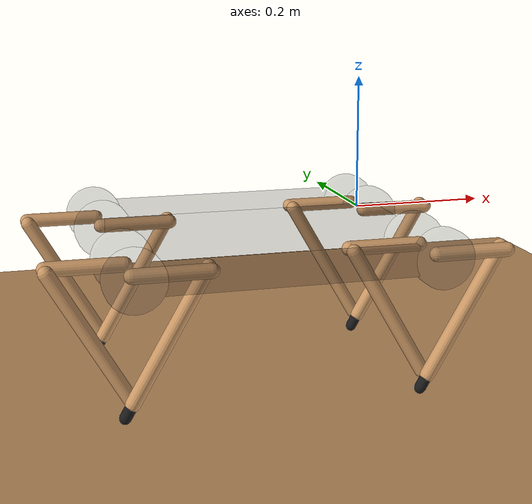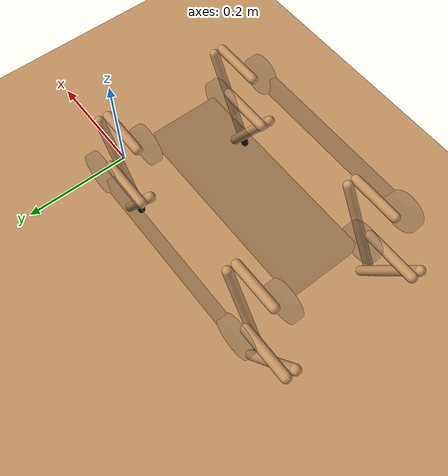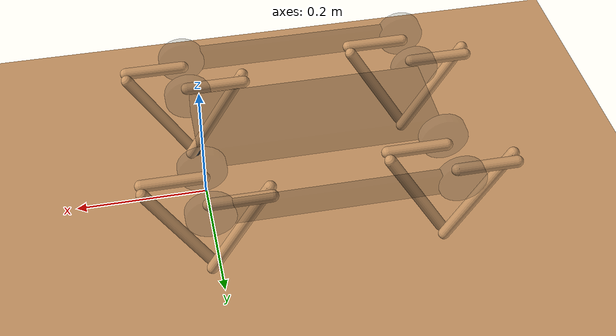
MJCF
<mujoco model="minitaur">
	<compiler coordinate="global"/>

	<default>
		<geom rgba=".8 .6 .4 1"/>
	</default>

	<asset>
		<texture type="skybox" builtin="gradient" rgb1="1 1 1" rgb2=".6 .8 1" width="256" height="256"/>
	</asset>

	<worldbody>
		<body>
			<light pos="0 2 2" dir="0 -1 -1" diffuse="1 1 1"/>
			<geom type="box" pos="-0.2 -0.33 0" size="0.2 0.008 0.02" rgba="0 0 0  0.2" />
			<geom type="box" pos="-0.2  0.05 0" size="0.2 0.008 0.02" rgba="0 0 0  0.2" />
			<geom type="box" pos="-0.2  -0.14 0" size="0.2 0.07 0.02" rgba="0 0 0  0.2" />
			<joint type="free"/>

			<body>
				<!--- Geometry for motors (1) --->
				<geom type="cylinder" fromto="0  0.04 0 0  0.06 0" size="0.04" rgba="0.2 0.2 0.2 0.2" />
				<geom type="cylinder" fromto="0 -0.04 0 0 -0.06 0" size="0.04" rgba="0.2 0.2 0.2 0.2" />

				<!---- Defines the leg a (hip, femur, knee, tibia) ---->
				<body name="leg_1a">
					<geom  name="femur_1a" type="capsule" fromto="0 -0.03 0  0.1 -0.03 0" size="0.01"/>
					<joint name="hip_1a" type="hinge" pos="0 -0.04 0" axis="0 1 0"/>

					<body name="tibia_1a">
						<geom type="capsule" fromto="0.1 -0.01 0   0 -0.01 -0.1732" size="0.01" />
						<joint name="knee_1a" type="hinge" pos="0.1 -0.02 0" axis="0 1 0"/>

						<body>
							<geom name="foot_1" type="capsule" fromto="0 -0.01 -0.1732  -0.01 -0.01 -0.19052" size="0.008"  rgba="0.1 0.1 0.1 1"/>
						</body>
					</body>
				</body>

				<!---- Defines the leg b (hip, femur, knee, tibia) ---->
				<body name="leg_1b">
					<geom  name="femur_1b" type="capsule" fromto="0 0.03 0 -0.1 0.03 0" size="0.01"/>
					<joint name="hip_1b"   type="hinge" pos="0 0.03 0" axis="0 1 0"/>

					<body name="tibia_1b">
						<geom type="capsule" fromto="-0.1 0.01 0 0 0.01 -0.1732" size="0.01"/>
						<joint name="knee_1b"  type="hinge" pos="-0.1 0.01 0" axis="0 1 0"/>
					</body>
				</body>
			</body>

			<body>
				<!--- Geometry for motors (2) --->
				<geom type="cylinder" fromto="-0.4 0.04 0 -0.4 0.06 0" size="0.04" rgba="0.2 0.2 0.2 0.2" />
				<geom type="cylinder" fromto="-0.4 -0.04 0 -0.4 -0.06 0" size="0.04" rgba="0.2 0.2 0.2 0.2" />

				<!---- Defines the leg a (hip, femur, knee, tibia) ---->
				<body name="leg_2a">
					<geom  name="femur_2a" type="capsule" fromto="-0.4 -0.03 0  -0.3 -0.03 0" size="0.01"/>
					<joint name="hip_2a" type="hinge" pos="-0.4 -0.04 0" axis="0 1 0"/>

					<body name="tibia_2a">
						<geom type="capsule" fromto="-0.3 -0.01 0   -0.4 -0.01 -0.1732" size="0.01" />
						<joint name="knee_2a" type="hinge" pos="-0.3 -0.02 0" axis="0 1 0"/>

						<body>
							<geom name="foot_2" type="capsule" fromto="-0.4 -0.01 -0.1732  -0.41 -0.01 -0.19052" size="0.008"  rgba="0.1 0.1 0.1 1"/>
						</body>
					</body>
				</body>

				<!---- Defines the leg b (hip, femur, knee, tibia) ---->
				<body name="leg_2b">
					<geom  name="femur_2b" type="capsule" fromto="-0.4 0.03 0 -0.5 0.03 0" size="0.01"/>
					<joint name="hip_2b"   type="hinge" pos="-0.4 0.03 0" axis="0 1 0"/>

					<body name="tibia_2b">
						<geom type="capsule" fromto="-0.5 0.01 0 -0.4 0.01 -0.1732" size="0.01"/>
						<joint name="knee_2b"  type="hinge" pos="-0.5 0.01 0" axis="0 1 0"/>
					</body>
				</body>
			</body>

			<body>
				<!--- Geometry for motors (3) --->
				<geom type="cylinder" fromto="0 -0.24 0 0 -0.22 0" size="0.04" rgba="0.2 0.2 0.2 0.2" />
				<geom type="cylinder" fromto="0 -0.32 0 0 -0.34 0" size="0.04" rgba="0.2 0.2 0.2 0.2" />

				<!---- Defines the leg a (hip, femur, knee, tibia) ---->
				<body name="leg_3a">
					<geom  name="femur_3a" type="capsule" fromto="0 -0.31 0  0.1 -0.31 0" size="0.01"/>
					<joint name="hip_3a" type="hinge" pos="0 -0.32 0" axis="0 1 0"/>

					<body name="tibia_3a">
						<geom type="capsule" fromto="0.1 -0.29 0   0 -0.29 -0.1732" size="0.01" />
						<joint name="knee_3a" type="hinge" pos="0.1 -0.30 0" axis="0 1 0"/>

						<body>
							<geom name="foot_3" type="capsule" fromto="0 -0.29 -0.1732  -0.01 -0.29 -0.19052" size="0.008"  rgba="0.1 0.1 0.1 1"/>
						</body>
					</body>
				</body>

				<!---- Defines the leg b (hip, femur, knee, tibia) ---->
				<body name="leg_3b">
					<geom  name="femur_3b" type="capsule" fromto="0 -0.25 0 -0.1 -0.25 0" size="0.01"/>
					<joint name="hip_3b"   type="hinge" pos="0 -0.24 0" axis="0 1 0"/>

					<body name="tibia_3b">
						<geom type="capsule" fromto="-0.1 -0.27 0 0 -0.27 -0.1732" size="0.01"/>
						<joint name="knee_3b"  type="hinge" pos="-0.1 -0.26 0" axis="0 1 0"/>
					</body>
				</body>
			</body>

			<body>
				<!--- Geometry for motors (4) --->
				<geom type="cylinder" fromto="-0.4 -0.24 0 -0.4 -0.22 0" size="0.04" rgba="0.2 0.2 0.2 0.2" />
				<geom type="cylinder" fromto="-0.4 -0.32 0 -0.4 -0.34 0" size="0.04" rgba="0.2 0.2 0.2 0.2" />

				<!---- Defines the leg a (hip, femur, knee, tibia) ---->
				<body name="leg_4a">
					<geom  name="femur_4a" type="capsule" fromto="-0.4 -0.31 0  -0.3 -0.31 0" size="0.01"/>
					<joint name="hip_4a" type="hinge" pos="-0.4 -0.32 0" axis="0 1 0"/>

					<body name="tibia_4a">
						<geom type="capsule" fromto="-0.3 -0.29 0   -0.4 -0.29 -0.1732" size="0.01" />
						<joint name="knee_4a" type="hinge" pos="-0.3 -0.30 0" axis="0 1 0"/>

						<body>
							<geom name="foot_4" type="capsule" fromto="-0.4 -0.29 -0.1732  -0.41 -0.29 -0.19052" size="0.008"  rgba="0.1 0.1 0.1 1"/>
						</body>
					</body>
				</body>

				<!---- Defines the leg b (hip, femur, knee, tibia) ---->
				<body name="leg_4b">
					<geom  name="femur_4b" type="capsule" fromto="-0.4 -0.25 0 -0.5 -0.25 0" size="0.01"/>
					<joint name="hip_4b"   type="hinge" pos="-0.4 -0.24 0" axis="0 1 0"/>

					<body name="tibia_4b">
						<geom type="capsule" fromto="-0.5 -0.27 0 -0.4 -0.27 -0.1732" size="0.01"/>
						<joint name="knee_4b"  type="hinge" pos="-0.5 -0.26 0" axis="0 1 0"/>
					</body>
				</body>
			</body>
		</body>

		<geom type="plane" pos="0 0 -0.2"  size="1 1 0.1"/>
	</worldbody>

	<equality>
		<connect body1="tibia_1a" body2="tibia_1b" anchor="0 0 -0.1732" />
		<connect body1="tibia_2a" body2="tibia_2b" anchor="-0.4 0 -0.1732" />
		<connect body1="tibia_3a" body2="tibia_3b" anchor="0 -0.28 -0.1732" />
		<connect body1="tibia_4a" body2="tibia_4b" anchor="-0.4 -0.28 -0.1732" />
	</equality>

	<actuator>
		<position name="u1" kp="5" joint="hip_1a" />
		<velocity name="u2" kv="0.1" joint="hip_1a" />

		<position name="u3" kp="5" joint="hip_1b" />
		<velocity name="u4" kv="0.1" joint="hip_1b" />

		<position name="u5" kp="5" joint="hip_2a" />
		<velocity name="u6" kv="0.1" joint="hip_2a" />

		<position name="u7" kp="5" joint="hip_2b" />
		<velocity name="u8" kv="0.1" joint="hip_2b" />

		<position name="u9" kp="5" joint="hip_3a" />
		<velocity name="ua" kv="0.1" joint="hip_3a" />

		<position name="ub" kp="5" joint="hip_3b" />
		<velocity name="uc" kv="0.1" joint="hip_3b" />

		<position name="ud" kp="5" joint="hip_4a" />
		<velocity name="ue" kv="0.1" joint="hip_4a" />

		<position name="uf" kp="5" joint="hip_4b" />
		<velocity name="ug" kv="0.1" joint="hip_4b" />
	</actuator>

</mujoco>
